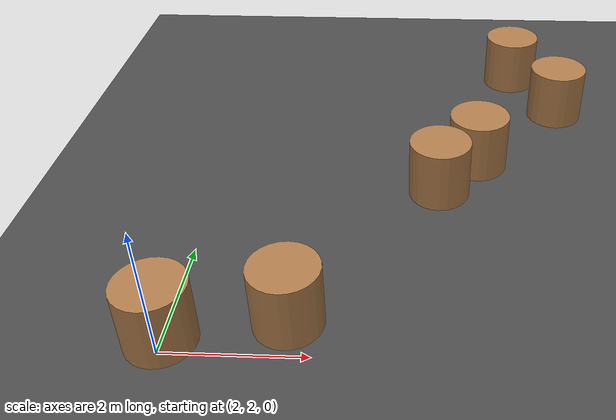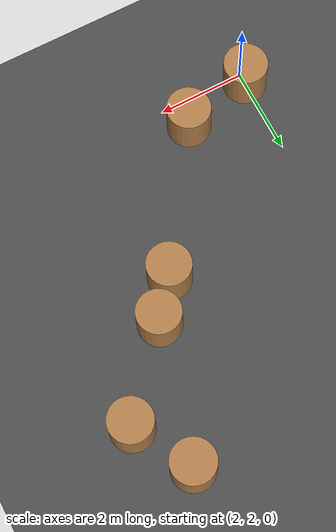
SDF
<sdf version="1.6">
 <world name="default">
  <light name="sun" type="directional">
   <pose>0 0 10 0 -0 0</pose>
   <diffuse>0.8 0.8 0.8 1</diffuse>
   <specular>0.2 0.2 0.2 1</specular>
   <attenuation>
    <range>1000</range>
    <constant>0.9</constant>
    <linear>0.01</linear>
    <quadratic>0.001</quadratic>
   </attenuation>
   <direction>-0.5 0.1 -0.9</direction>
  </light>
  <model name="ground_plane">
   <static>1</static>
   <link name="link">
    <collision name="collision">
     <geometry><plane><normal>0 0 1</normal><size>100 100</size></plane></geometry>
     <surface>
      <contact><collide_bitmask>65535</collide_bitmask></contact>
      <friction><ode><mu>100</mu><mu2>50</mu2></ode></friction>
     </surface>
    </collision>
    <visual name="visual">
     <cast_shadows>0</cast_shadows>
     <geometry><plane><normal>0 0 1</normal><size>100 100</size></plane></geometry>
     <material>
      <script><uri>file://media/materials/scripts/gazebo.material</uri><name>Gazebo/DarkGrey</name></script>
     </material>
    </visual>
   </link>
  </model>
  <model name="model_1">
   <allow_auto_disable>false</allow_auto_disable>
   <pose>3.63 2.6 0.5 0 -0 0</pose>
   <link name="link">
    <inertial>
     <mass>0.004027552138453025</mass>
     <inertia>
      <ixx>7.91307599122789e-06</ixx>
      <iyy>1.6274618627189043e-05</iyy>
      <izz>2.361954240863773e-05</izz>
      <ixy>0.0</ixy>
      <ixz>0.0</ixz>
      <iyz>0.0</iyz>
     </inertia>
    </inertial>
    <collision name="collision">
     <geometry><cylinder><radius>0.5</radius><length>1</length></cylinder></geometry>
    </collision>
    <visual name="visual">
     <geometry><cylinder><radius>0.5</radius><length>1</length></cylinder></geometry>
     <material>
      <script><name>Gazebo/Wood</name><uri>file://media/materials/scripts/gazebo.material</uri></script>
     </material>
    </visual>
   </link>
  </model>
  <model name="model_2">
   <allow_auto_disable>false</allow_auto_disable>
   <pose>5.68 5.61 0.5 0 -0 0</pose>
   <link name="link">
    <inertial>
     <mass>0.004027552138453025</mass>
     <inertia>
      <ixx>7.91307599122789e-06</ixx>
      <iyy>1.6274618627189043e-05</iyy>
      <izz>2.361954240863773e-05</izz>
      <ixy>0.0</ixy>
      <ixz>0.0</ixz>
      <iyz>0.0</iyz>
     </inertia>
    </inertial>
    <collision name="collision">
     <geometry><cylinder><radius>0.5</radius><length>1</length></cylinder></geometry>
    </collision>
    <visual name="visual">
     <geometry><cylinder><radius>0.5</radius><length>1</length></cylinder></geometry>
     <material>
      <script><name>Gazebo/Wood</name><uri>file://media/materials/scripts/gazebo.material</uri></script>
     </material>
    </visual>
   </link>
  </model>
  <model name="model_3">
   <allow_auto_disable>false</allow_auto_disable>
   <pose>7.9 8.2 0.5 0 -0 0</pose>
   <link name="link">
    <inertial>
     <mass>0.004027552138453025</mass>
     <inertia>
      <ixx>7.91307599122789e-06</ixx>
      <iyy>1.6274618627189043e-05</iyy>
      <izz>2.361954240863773e-05</izz>
      <ixy>0.0</ixy>
      <ixz>0.0</ixz>
      <iyz>0.0</iyz>
     </inertia>
    </inertial>
    <collision name="collision">
     <geometry><cylinder><radius>0.5</radius><length>1</length></cylinder></geometry>
    </collision>
    <visual name="visual">
     <geometry><cylinder><radius>0.5</radius><length>1</length></cylinder></geometry>
     <material>
      <script><name>Gazebo/Wood</name><uri>file://media/materials/scripts/gazebo.material</uri></script>
     </material>
    </visual>
   </link>
  </model>
  <model name="model_4">
   <allow_auto_disable>false</allow_auto_disable>
   <pose>7.16 9.53 0.5 0 -0 0</pose>
   <link name="link">
    <inertial>
     <mass>0.004027552138453025</mass>
     <inertia>
      <ixx>7.91307599122789e-06</ixx>
      <iyy>1.6274618627189043e-05</iyy>
      <izz>2.361954240863773e-05</izz>
      <ixy>0.0</ixy>
      <ixz>0.0</ixz>
      <iyz>0.0</iyz>
     </inertia>
    </inertial>
    <collision name="collision">
     <geometry><cylinder><radius>0.5</radius><length>1</length></cylinder></geometry>
    </collision>
    <visual name="visual">
     <geometry><cylinder><radius>0.5</radius><length>1</length></cylinder></geometry>
     <material>
      <script><name>Gazebo/Wood</name><uri>file://media/materials/scripts/gazebo.material</uri></script>
     </material>
    </visual>
   </link>
  </model>
  <model name="model_5">
   <allow_auto_disable>false</allow_auto_disable>
   <pose>2.0 2.23 0.5 0 -0 0</pose>
   <link name="link">
    <inertial>
     <mass>0.004027552138453025</mass>
     <inertia>
      <ixx>7.91307599122789e-06</ixx>
      <iyy>1.6274618627189043e-05</iyy>
      <izz>2.361954240863773e-05</izz>
      <ixy>0.0</ixy>
      <ixz>0.0</ixz>
      <iyz>0.0</iyz>
     </inertia>
    </inertial>
    <collision name="collision">
     <geometry><cylinder><radius>0.5</radius><length>1</length></cylinder></geometry>
    </collision>
    <visual name="visual">
     <geometry><cylinder><radius>0.5</radius><length>1</length></cylinder></geometry>
     <material>
      <script><name>Gazebo/Wood</name><uri>file://media/materials/scripts/gazebo.material</uri></script>
     </material>
    </visual>
   </link>
  </model>
  <model name="model_6">
   <allow_auto_disable>false</allow_auto_disable>
   <pose>6.35 6.44 0.5 0 -0 0</pose>
   <link name="link">
    <inertial>
     <mass>0.004027552138453025</mass>
     <inertia>
      <ixx>7.91307599122789e-06</ixx>
      <iyy>1.6274618627189043e-05</iyy>
      <izz>2.361954240863773e-05</izz>
      <ixy>0.0</ixy>
      <ixz>0.0</ixz>
      <iyz>0.0</iyz>
     </inertia>
    </inertial>
    <collision name="collision">
     <geometry><cylinder><radius>0.5</radius><length>1</length></cylinder></geometry>
    </collision>
    <visual name="visual">
     <geometry><cylinder><radius>0.5</radius><length>1</length></cylinder></geometry>
     <material>
      <script><name>Gazebo/Wood</name><uri>file://media/materials/scripts/gazebo.material</uri></script>
     </material>
    </visual>
   </link>
  </model>
 </world>
</sdf>
